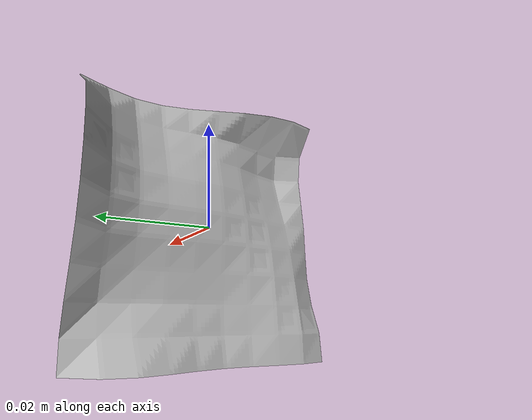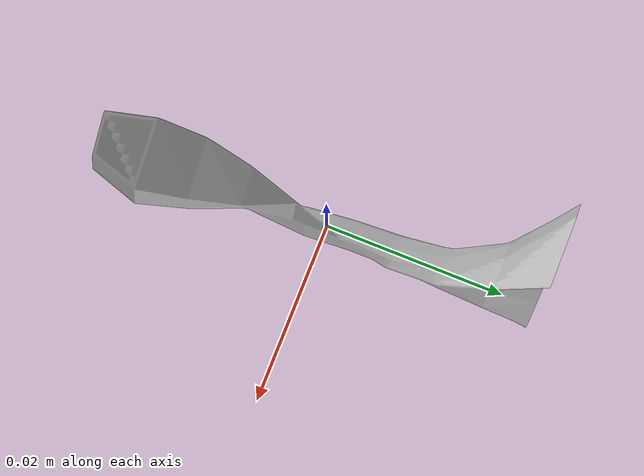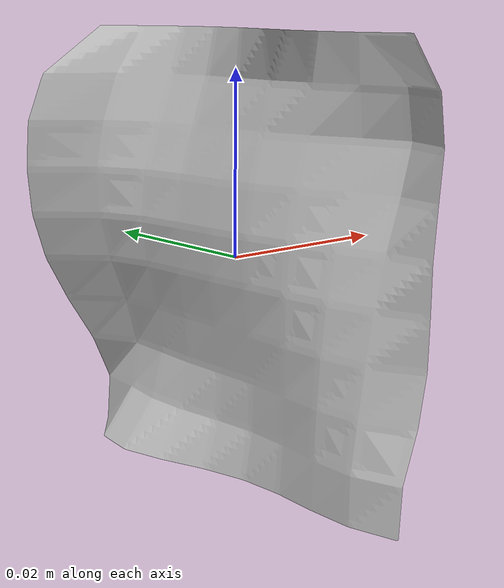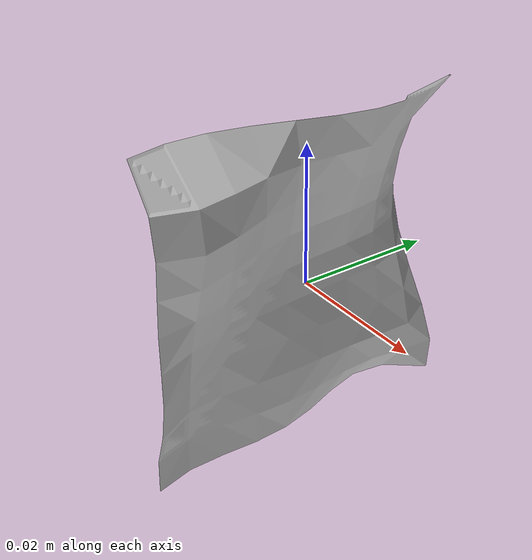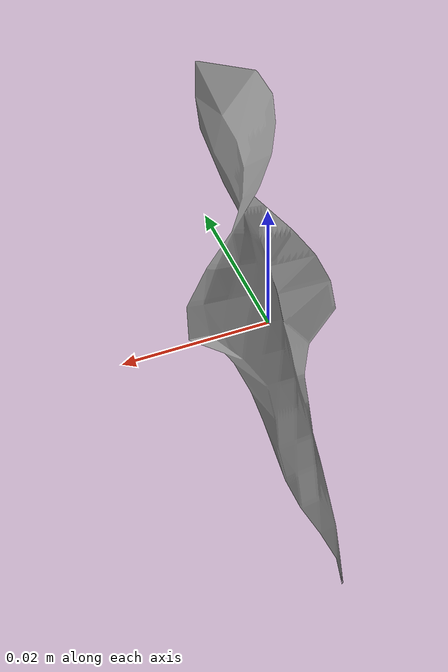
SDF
<?xml version='1.0'?>
<sdf version='1.6'>
  <model name="ID6_130">
  <static>true</static>
    <link name="link">
      <collision name="collision">
        <geometry>
          <mesh>
            <uri>model://test/meshes/ID6_130.dae</uri>
          </mesh>
        </geometry>
      </collision>

      <visual name='visual'>
        <geometry>
          <mesh>
            <uri>model://ID6_130/meshes/ID6_130.dae</uri>
          </mesh>
        </geometry>
      </visual>
    </link>

    </model>
  </sdf>
